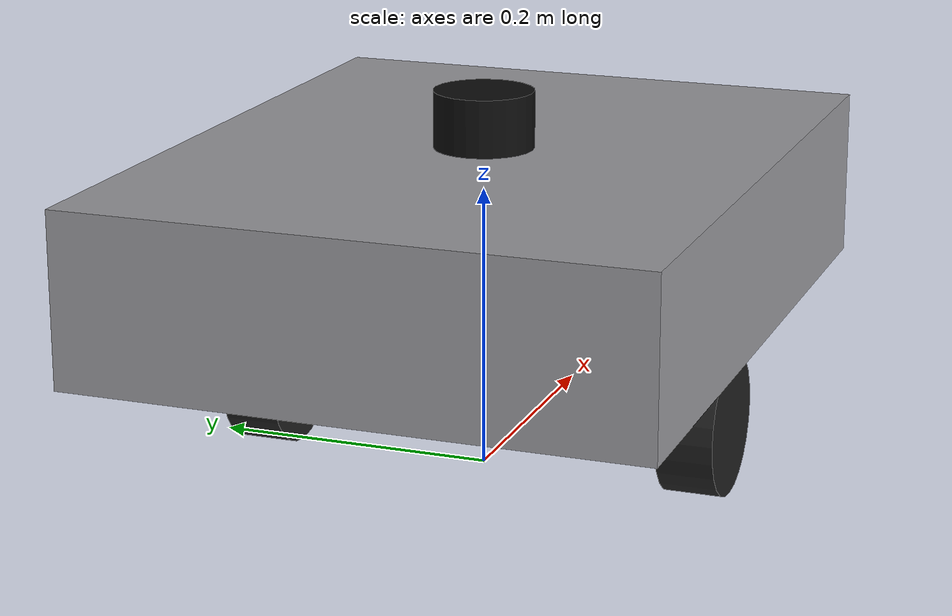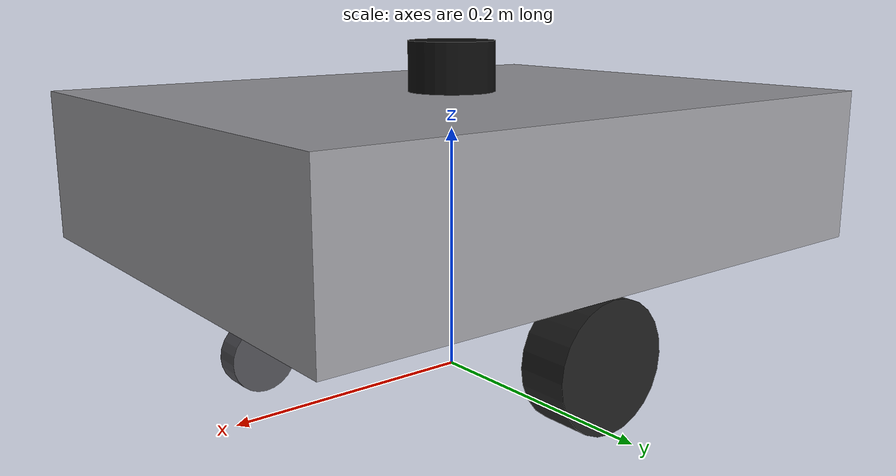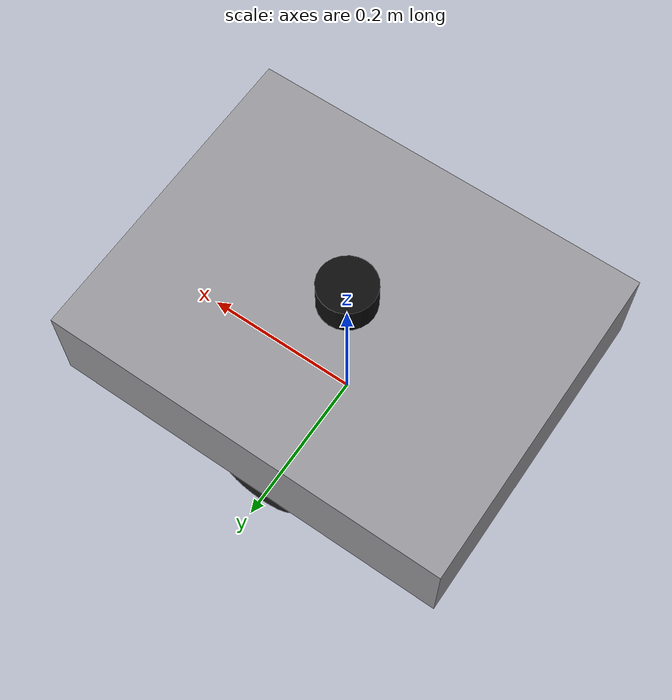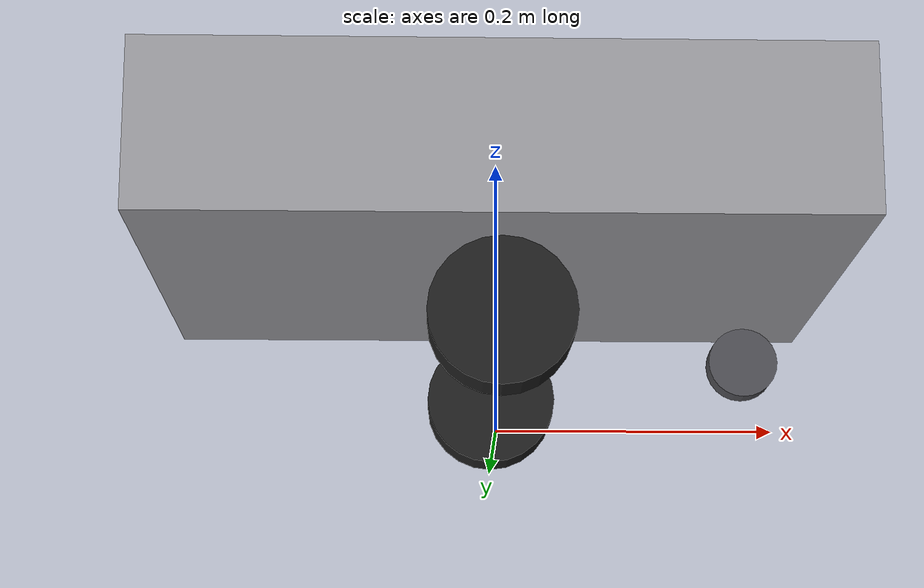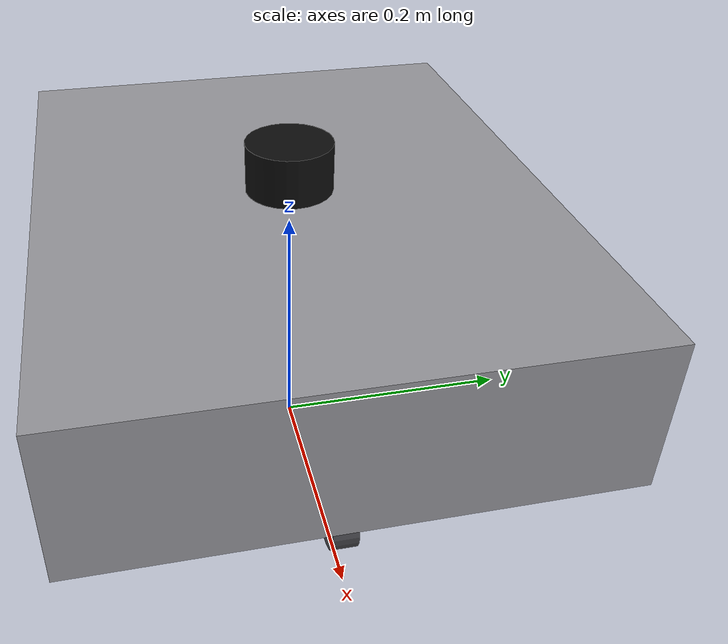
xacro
<?xml version="1.0"?>
<!--
  AMR differential-drive robot description.
  All mechanical parameters are defined in this file and consumed by included Xacro modules.
-->
<robot xmlns:xacro="http://www.ros.org/wiki/xacro" name="amr">

  <!-- Mechanical parameters (SI units: meters, kilograms, radians)       -->

  <!-- Chassis -->
  <xacro:property name="chassis_length" value="0.500"/>
  <xacro:property name="chassis_width" value="0.400"/>
  <xacro:property name="chassis_height" value="0.120"/>
  <xacro:property name="chassis_mass" value="20.0"/>

  <!-- Drive wheels -->
  <xacro:property name="wheel_radius" value="0.050"/>
  <xacro:property name="wheel_width" value="0.040"/>
  <xacro:property name="wheel_mass" value="0.800"/>
  <xacro:property name="wheel_separation" value="0.320"/>
  <xacro:property name="wheel_x_offset" value="0.000"/>
  <xacro:property name="wheel_z_offset" value="-0.060"/>

  <!-- Passive caster -->
  <xacro:property name="caster_radius" value="0.025"/>
  <xacro:property name="caster_width" value="0.020"/>
  <xacro:property name="caster_mass" value="0.200"/>
  <xacro:property name="caster_x_offset" value="0.180"/>
  <xacro:property name="caster_y_offset" value="0.000"/>
  <xacro:property name="caster_z_offset" value="${wheel_z_offset}"/>

  <!-- Sensors (mount poses relative to base_link) -->
  <xacro:property name="laser_x_offset" value="0.000"/>
  <xacro:property name="laser_y_offset" value="0.000"/>
  <xacro:property name="laser_z_offset" value="0.140"/>
  <xacro:property name="laser_radius" value="0.035"/>
  <xacro:property name="laser_height" value="0.040"/>
  <xacro:property name="laser_mass" value="0.300"/>

  <xacro:property name="imu_x_offset" value="0.000"/>
  <xacro:property name="imu_y_offset" value="0.000"/>
  <xacro:property name="imu_z_offset" value="0.060"/>
  <xacro:property name="imu_size" value="0.030"/>
  <xacro:property name="imu_mass" value="0.010"/>

  <!-- Derived: base_link height so wheel contact meets ground at base_footprint -->
  <xacro:property name="base_link_z" value="${wheel_radius - wheel_z_offset}"/>

  <!-- Material definitions                                               -->
  <material name="chassis_grey">
    <color rgba="0.60 0.60 0.62 1.0"/>
  </material>
  <material name="wheel_black">
    <color rgba="0.12 0.12 0.12 1.0"/>
  </material>
  <material name="caster_grey">
    <color rgba="0.30 0.30 0.32 1.0"/>
  </material>
  <material name="laser_dark">
    <color rgba="0.05 0.05 0.05 1.0"/>
  </material>
  <material name="imu_blue">
    <color rgba="0.20 0.40 0.80 1.0"/>
  </material>

  <!-- Module includes and instantiation                                  -->
  <xacro:include filename="$(find amr_description)/urdf/amr_base.xacro"/>
  <xacro:include filename="$(find amr_description)/urdf/amr_wheels.xacro"/>
  <xacro:include filename="$(find amr_description)/urdf/amr_caster.xacro"/>
  <xacro:include filename="$(find amr_description)/urdf/amr_sensors.xacro"/>

  <xacro:amr_base/>
  <xacro:amr_wheels/>
  <xacro:amr_caster/>
  <xacro:amr_sensors/>

</robot>

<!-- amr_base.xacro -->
<robot xmlns:xacro="http://www.ros.org/wiki/xacro">

  <xacro:macro name="amr_base">

    <!-- Ground projection frame (REP-105) -->
    <link name="base_footprint"/>

    <joint name="base_footprint_joint" type="fixed">
      <parent link="base_footprint"/>
      <child link="base_link"/>
      <origin xyz="0 0 ${base_link_z}" rpy="0 0 0"/>
    </joint>

    <link name="base_link">
      <visual>
        <origin xyz="0 0 ${chassis_height / 2.0}" rpy="0 0 0"/>
        <geometry>
          <box size="${chassis_length} ${chassis_width} ${chassis_height}"/>
        </geometry>
        <material name="chassis_grey"/>
      </visual>
      <collision>
        <origin xyz="0 0 ${chassis_height / 2.0}" rpy="0 0 0"/>
        <geometry>
          <box size="${chassis_length} ${chassis_width} ${chassis_height}"/>
        </geometry>
      </collision>
      <inertial>
        <origin xyz="0 0 ${chassis_height / 2.0}" rpy="0 0 0"/>
        <mass value="${chassis_mass}"/>
        <inertia
          ixx="${chassis_mass / 12.0 * (chassis_width * chassis_width + chassis_height * chassis_height)}"
          ixy="0.0"
          ixz="0.0"
          iyy="${chassis_mass / 12.0 * (chassis_length * chassis_length + chassis_height * chassis_height)}"
          iyz="0.0"
          izz="${chassis_mass / 12.0 * (chassis_length * chassis_length + chassis_width * chassis_width)}"/>
      </inertial>
    </link>

  </xacro:macro>

</robot>

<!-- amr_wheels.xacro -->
<robot xmlns:xacro="http://www.ros.org/wiki/xacro">

  <xacro:property name="wheel_roll" value="1.57079632679"/>

  <xacro:macro name="drive_wheel" params="prefix y_offset">
    <link name="${prefix}_wheel_link">
      <visual>
        <origin xyz="0 0 0" rpy="${wheel_roll} 0 0"/>
        <geometry>
          <cylinder radius="${wheel_radius}" length="${wheel_width}"/>
        </geometry>
        <material name="wheel_black"/>
      </visual>
      <collision>
        <origin xyz="0 0 0" rpy="${wheel_roll} 0 0"/>
        <geometry>
          <cylinder radius="${wheel_radius}" length="${wheel_width}"/>
        </geometry>
      </collision>
      <inertial>
        <origin xyz="0 0 0" rpy="${wheel_roll} 0 0"/>
        <mass value="${wheel_mass}"/>
        <inertia
          ixx="${wheel_mass / 12.0 * (3.0 * wheel_radius * wheel_radius + wheel_width * wheel_width)}"
          ixy="0.0"
          ixz="0.0"
          iyy="${wheel_mass / 2.0 * wheel_radius * wheel_radius}"
          iyz="0.0"
          izz="${wheel_mass / 12.0 * (3.0 * wheel_radius * wheel_radius + wheel_width * wheel_width)}"/>
      </inertial>
    </link>

    <joint name="${prefix}_wheel_joint" type="continuous">
      <parent link="base_link"/>
      <child link="${prefix}_wheel_link"/>
      <origin
        xyz="${wheel_x_offset} ${y_offset} ${wheel_z_offset}"
        rpy="0 0 0"/>
      <axis xyz="0 1 0"/>
    </joint>
  </xacro:macro>

  <xacro:macro name="amr_wheels">
    <xacro:drive_wheel prefix="left" y_offset="${wheel_separation / 2.0}"/>
    <xacro:drive_wheel prefix="right" y_offset="${-wheel_separation / 2.0}"/>
  </xacro:macro>

</robot>

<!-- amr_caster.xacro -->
<robot xmlns:xacro="http://www.ros.org/wiki/xacro">

  <xacro:property name="caster_roll" value="1.57079632679"/>

  <xacro:macro name="amr_caster">

    <link name="caster_link">
      <visual>
        <origin xyz="0 0 0" rpy="${caster_roll} 0 0"/>
        <geometry>
          <cylinder radius="${caster_radius}" length="${caster_width}"/>
        </geometry>
        <material name="caster_grey"/>
      </visual>
      <collision>
        <origin xyz="0 0 0" rpy="${caster_roll} 0 0"/>
        <geometry>
          <cylinder radius="${caster_radius}" length="${caster_width}"/>
        </geometry>
      </collision>
      <inertial>
        <origin xyz="0 0 0" rpy="${caster_roll} 0 0"/>
        <mass value="${caster_mass}"/>
        <inertia
          ixx="${caster_mass / 12.0 * (3.0 * caster_radius * caster_radius + caster_width * caster_width)}"
          ixy="0.0"
          ixz="0.0"
          iyy="${caster_mass / 2.0 * caster_radius * caster_radius}"
          iyz="0.0"
          izz="${caster_mass / 12.0 * (3.0 * caster_radius * caster_radius + caster_width * caster_width)}"/>
      </inertial>
    </link>

    <joint name="caster_joint" type="fixed">
      <parent link="base_link"/>
      <child link="caster_link"/>
      <origin
        xyz="${caster_x_offset} ${caster_y_offset} ${caster_z_offset}"
        rpy="0 0 0"/>
    </joint>

  </xacro:macro>

</robot>

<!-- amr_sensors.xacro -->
<robot xmlns:xacro="http://www.ros.org/wiki/xacro">

  <xacro:macro name="amr_sensors">

    <!-- 2D LiDAR mount frame -->
    <link name="laser_link">
      <visual>
        <origin xyz="0 0 0" rpy="0 0 0"/>
        <geometry>
          <cylinder radius="${laser_radius}" length="${laser_height}"/>
        </geometry>
        <material name="laser_dark"/>
      </visual>
      <collision>
        <origin xyz="0 0 0" rpy="0 0 0"/>
        <geometry>
          <cylinder radius="${laser_radius}" length="${laser_height}"/>
        </geometry>
      </collision>
      <inertial>
        <origin xyz="0 0 0" rpy="0 0 0"/>
        <mass value="${laser_mass}"/>
        <inertia
          ixx="${laser_mass / 12.0 * (3.0 * laser_radius * laser_radius + laser_height * laser_height)}"
          ixy="0.0"
          ixz="0.0"
          iyy="${laser_mass / 12.0 * (3.0 * laser_radius * laser_radius + laser_height * laser_height)}"
          iyz="0.0"
          izz="${laser_mass / 2.0 * laser_radius * laser_radius}"/>
      </inertial>
    </link>

    <joint name="laser_joint" type="fixed">
      <parent link="base_link"/>
      <child link="laser_link"/>
      <origin
        xyz="${laser_x_offset} ${laser_y_offset} ${laser_z_offset}"
        rpy="0 0 0"/>
    </joint>

    <!-- IMU mount frame -->
    <link name="imu_link">
      <visual>
        <origin xyz="0 0 0" rpy="0 0 0"/>
        <geometry>
          <box size="${imu_size} ${imu_size} ${imu_size}"/>
        </geometry>
        <material name="imu_blue"/>
      </visual>
      <collision>
        <origin xyz="0 0 0" rpy="0 0 0"/>
        <geometry>
          <box size="${imu_size} ${imu_size} ${imu_size}"/>
        </geometry>
      </collision>
      <inertial>
        <origin xyz="0 0 0" rpy="0 0 0"/>
        <mass value="${imu_mass}"/>
        <inertia
          ixx="${imu_mass / 6.0 * imu_size * imu_size}"
          ixy="0.0"
          ixz="0.0"
          iyy="${imu_mass / 6.0 * imu_size * imu_size}"
          iyz="0.0"
          izz="${imu_mass / 6.0 * imu_size * imu_size}"/>
      </inertial>
    </link>

    <joint name="imu_joint" type="fixed">
      <parent link="base_link"/>
      <child link="imu_link"/>
      <origin
        xyz="${imu_x_offset} ${imu_y_offset} ${imu_z_offset}"
        rpy="0 0 0"/>
    </joint>

  </xacro:macro>

</robot>
